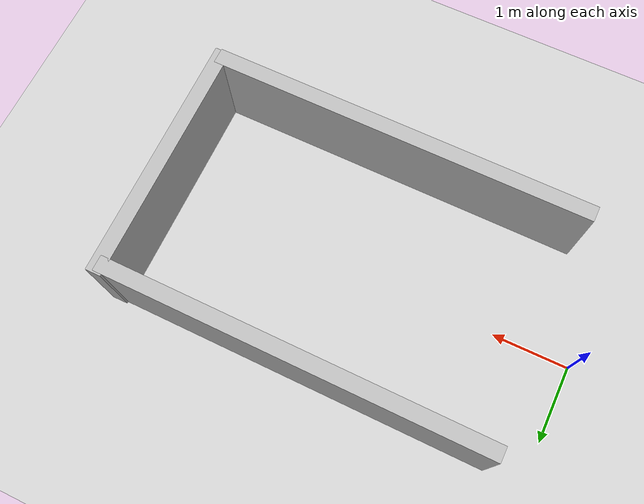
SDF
<?xml version="1.0"?>
<sdf version="1.6">
  <world name="v2-04d-maneuver-s4605">
    <gravity>0 0 -9.81</gravity>
    <physics name="v2_deterministic" type="ode">
      <max_step_size>0.002</max_step_size>
      <real_time_update_rate>500</real_time_update_rate>
    </physics>
    <include>
      <uri>model://sun</uri>
    </include>
    <include>
      <uri>model://ground_plane</uri>
    </include>
    <model name="bay-left">
      <static>true</static>
      <pose>2.998746356 1.477768088 0.600000000 0 0 -0.004747917</pose>
      <link name="link">
        <collision name="collision">
          <geometry>
            <box>
              <size>5.000000 0.200000 1.200000</size>
            </box>
          </geometry>
        </collision>
        <visual name="visual">
          <geometry>
            <box>
              <size>5.000000 0.200000 1.200000</size>
            </box>
          </geometry>
        </visual>
      </link>
    </model>
    <model name="bay-right">
      <static>true</static>
      <pose>3.017556392 -1.517348821 0.600000000 0 0 -0.002771648</pose>
      <link name="link">
        <collision name="collision">
          <geometry>
            <box>
              <size>5.000000 0.200000 1.200000</size>
            </box>
          </geometry>
        </collision>
        <visual name="visual">
          <geometry>
            <box>
              <size>5.000000 0.200000 1.200000</size>
            </box>
          </geometry>
        </visual>
      </link>
    </model>
    <model name="bay-back">
      <static>true</static>
      <pose>5.483181683 -0.009998002 0.600000000 0 0 0.003882421</pose>
      <link name="link">
        <collision name="collision">
          <geometry>
            <box>
              <size>0.200000 3.200000 1.200000</size>
            </box>
          </geometry>
        </collision>
        <visual name="visual">
          <geometry>
            <box>
              <size>0.200000 3.200000 1.200000</size>
            </box>
          </geometry>
        </visual>
      </link>
    </model>
  </world>
</sdf>
